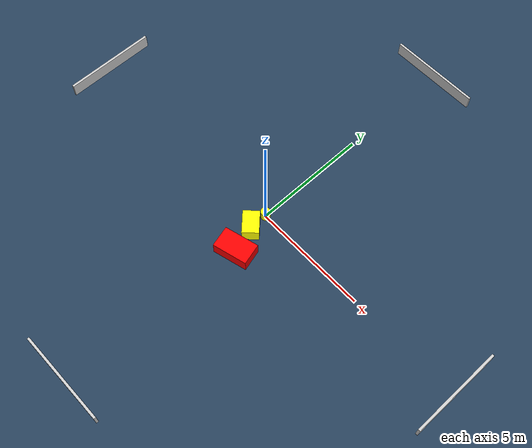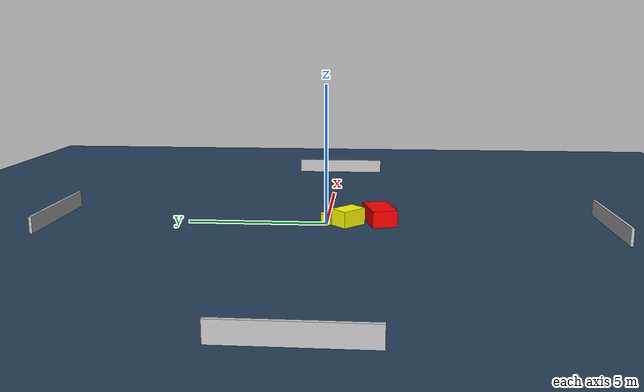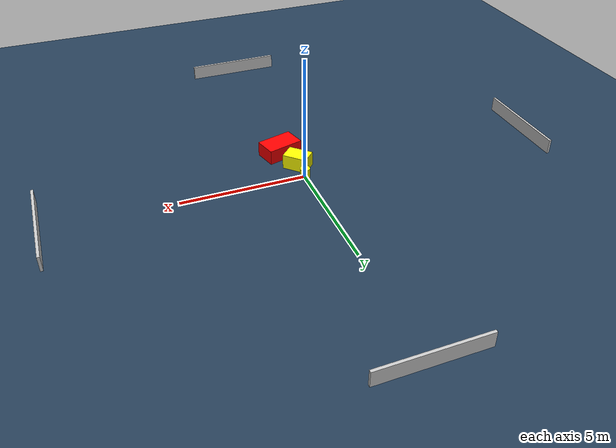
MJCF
<?xml version="1.0" ?>
<mujoco model="generated_environment">
  <option timestep="0.01" integrator="RK4" cone="elliptic"/>
  <default>
    <geom density="1"/>
  </default>
  <asset>
    <texture builtin="gradient" height="3072" name="skybox" rgb1="0.3 0.5 0.7" rgb2="0 0 0" type="skybox" width="512"/>
    <texture builtin="checker" height="300" name="groundplane" rgb1="0.2 0.3 0.4" rgb2="0.1 0.2 0.3" type="2d" width="300"/>
    <material name="groundplane" reflectance="0.2" texrepeat="5 5" texture="groundplane"/>
  </asset>
  <worldbody>
    <light dir="0 0 -1" directional="true" pos="0 0 1.5"/>
    <geom condim="3" friction="0.5 0.005 0.001" material="groundplane" name="floor" pos="0 0 0" size="0 0 0.05" type="plane"/>
    <body name="walls">
      <geom name="wall_1" condim="4" pos="-10.0 0.0 0.3" rgba="0.800000011920929 0.800000011920929 0.800000011920929 1.0" size="0.05 2.0 0.3" type="box"/>
      <geom name="wall_2" condim="4" pos="10.0 0.0 0.3" rgba="0.800000011920929 0.800000011920929 0.800000011920929 1.0" size="0.05 2.0 0.3" type="box"/>
      <geom name="wall_3" condim="4" pos="0.0 -10.0 0.3" rgba="0.800000011920929 0.800000011920929 0.800000011920929 1.0" size="2.0 0.05 0.3" type="box"/>
      <geom name="wall_4" condim="4" pos="0.0 10.0 0.3" rgba="0.800000011920929 0.800000011920929 0.800000011920929 1.0" size="2.0 0.05 0.3" type="box"/>
    </body>
    <body name="robot">
      <joint name="joint_x" type="slide" pos="0 0 0" axis="1 0 0"/>
      <joint name="joint_y" type="slide" pos="0 0 0" axis="0 1 0"/>
      <geom name="robot" type="cylinder" pos="0.0 0.0 0.2" size="0.2 0.2 0.0" mass="5.0" friction="1.0 0.005 0.0001" condim="4" rgba="1.0 1.0 0.0 1.0"/>
    </body>
    <body name="obstacle_1_movable">
      <geom name="obstacle_1_movable" condim="4" pos="0.006030891592493269 -0.7947356002291486 0.3" euler="0 0 315.0144222120597" friction="0.0 0.005 0.001" rgba="1.0 1.0 0.0 1.0" size="0.49327214516315676 0.34744815425202136 0.3" type="box" mass="0.1"/>
      <joint type="free"/>
    </body>
    <body name="obstacle_2_static">
      <geom name="obstacle_2_static" condim="4" pos="0.36282606828966824 -1.9216172444619448 0.3" euler="0 0 105.10893893274908" friction="0.0 0.005 0.001" rgba="1.0 0.0 0.0 1.0" size="0.45386236546990655 0.7419965566824096 0.3" type="box"/>
    </body>
  </worldbody>
  <actuator>
    <motor name="actuator_x" joint="joint_x" gear="1" ctrlrange="-1 1"/>
    <motor name="actuator_y" joint="joint_y" gear="1" ctrlrange="-1 1"/>
  </actuator>
</mujoco>
